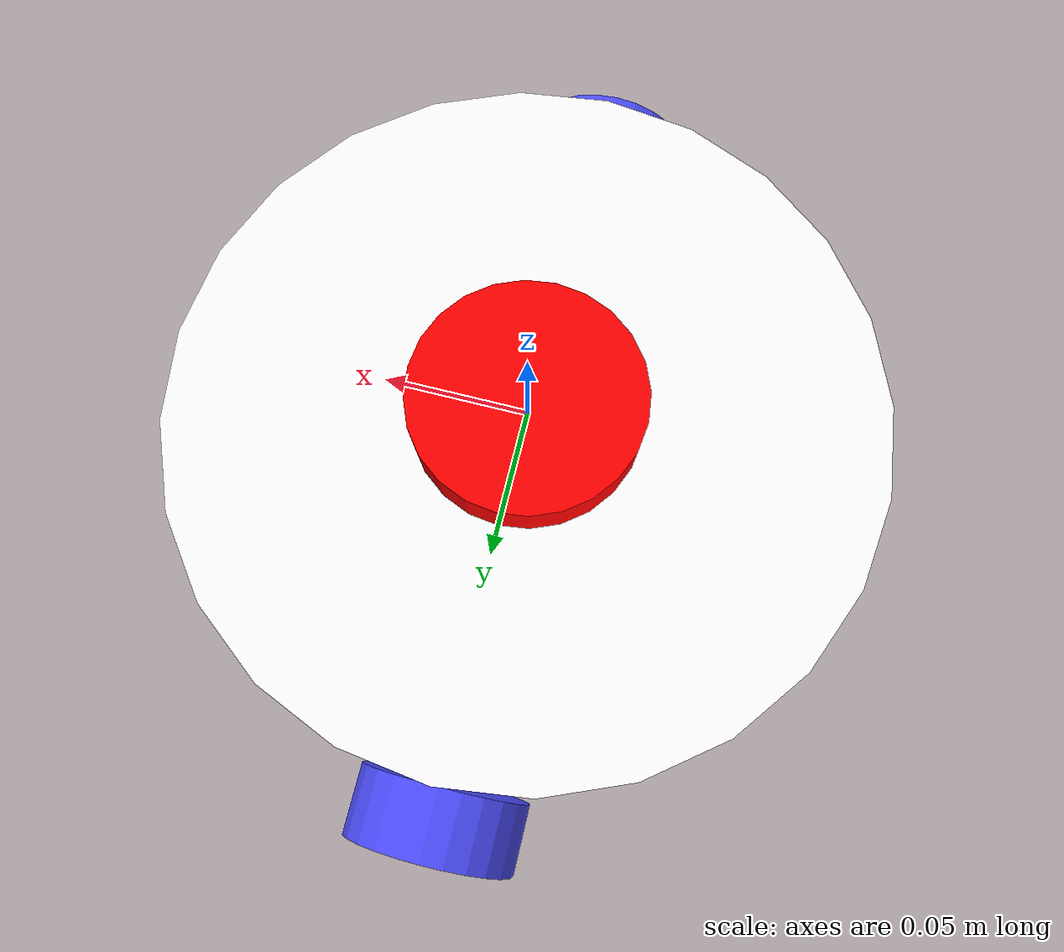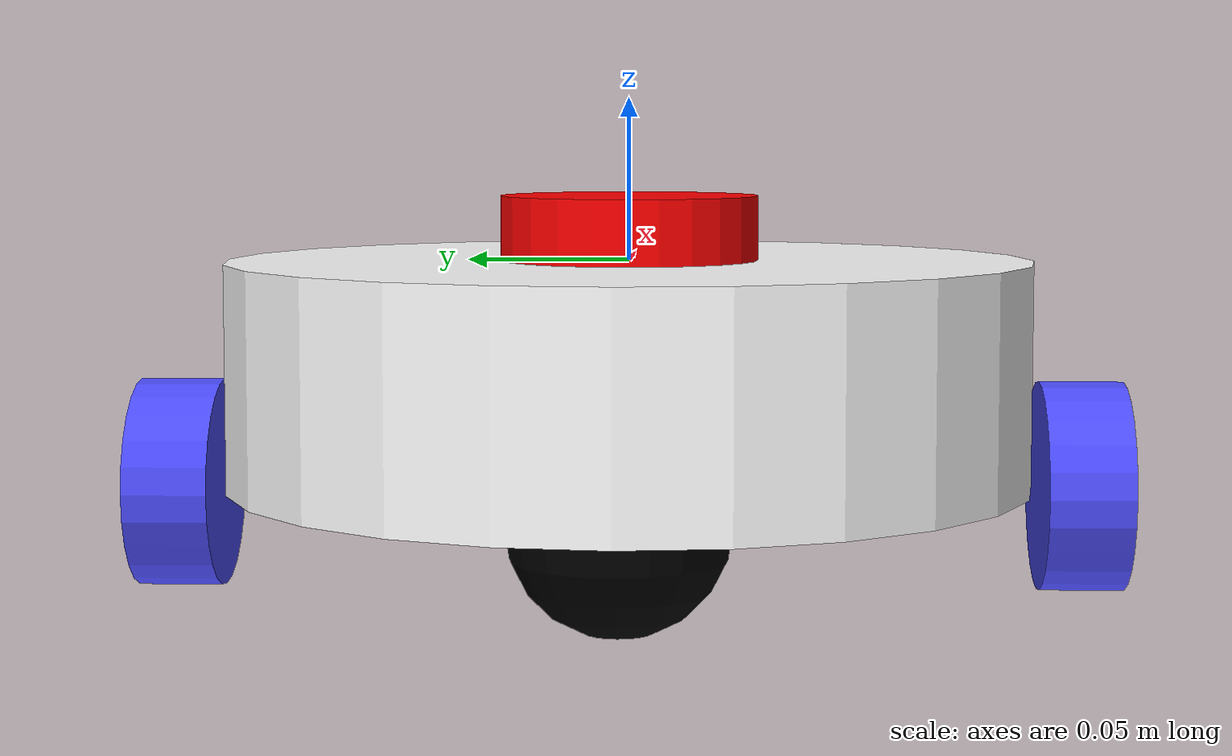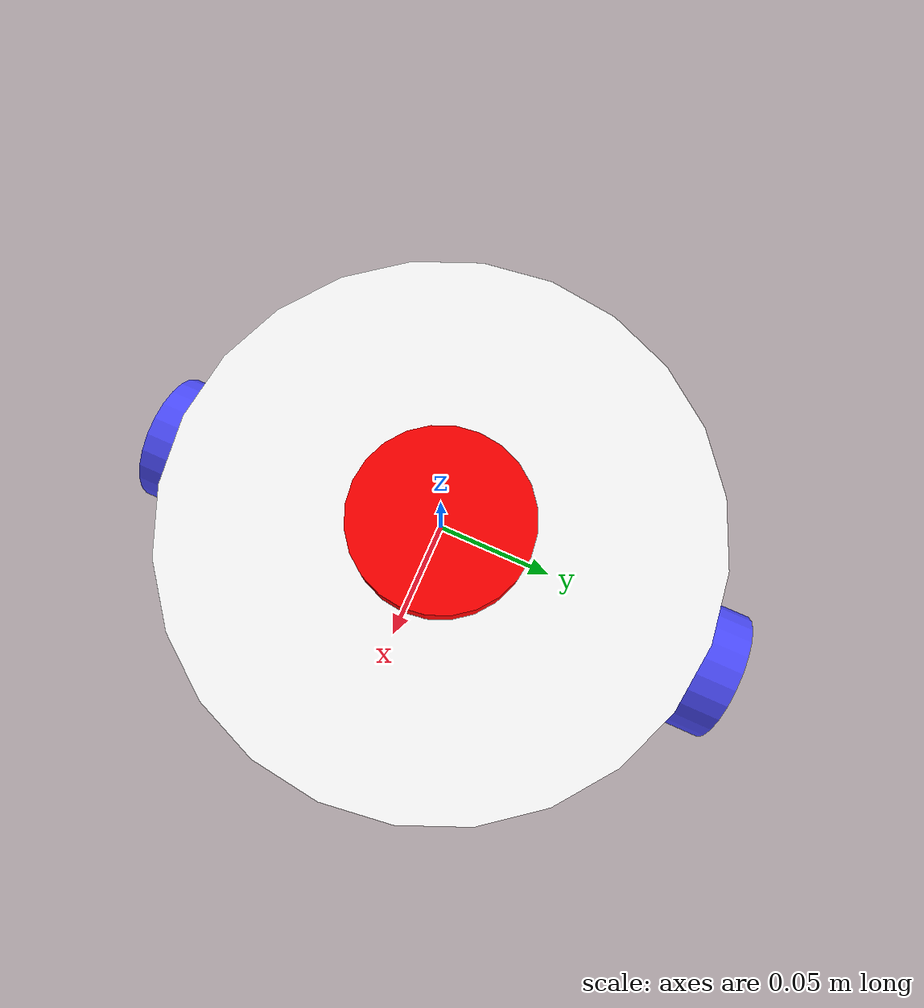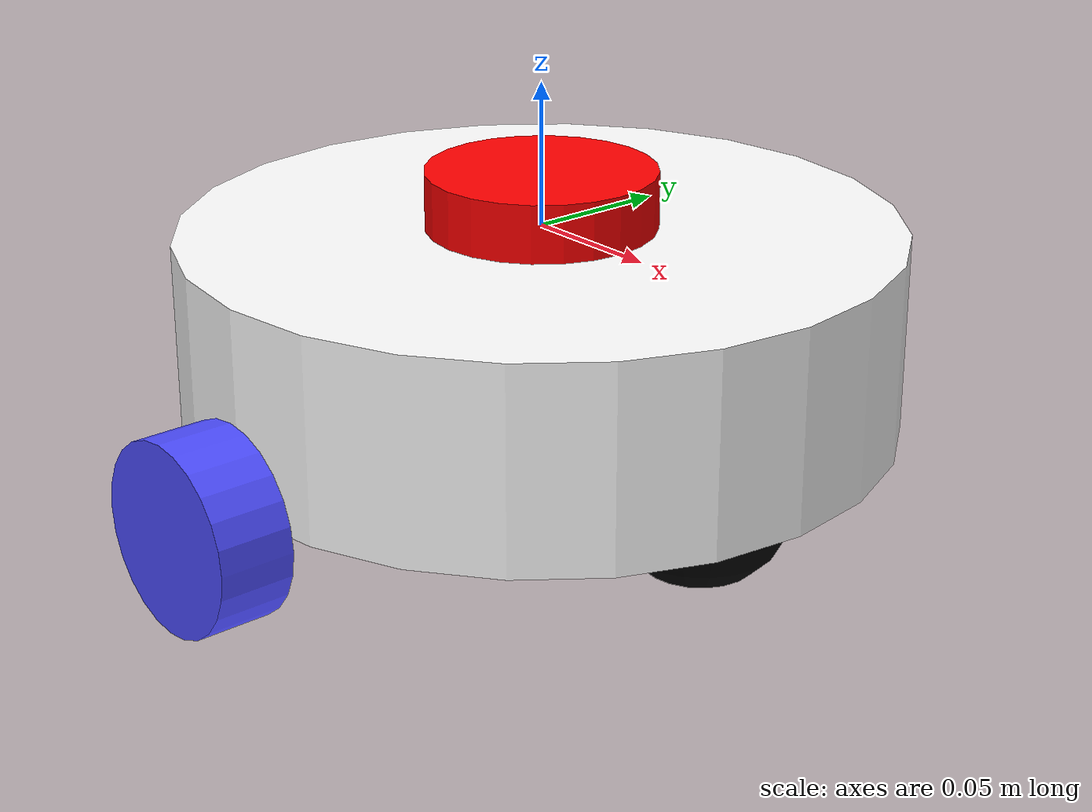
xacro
<?xml version="1.0"?>
<robot xmlns:xacro="http://www.ros.org/wiki/xacro"  name="robot">
    <xacro:arg name = "use_ros2_control" default="true"/>

    <xacro:include filename="robot_core.xacro"/>

    <xacro:if value = "$(arg use_ros2_control)">
        <xacro:include filename="ros2_control.xacro"/>
    </xacro:if>

    <xacro:unless value = "$(arg use_ros2_control)">
        <xacro:include filename="gazebo_control.xacro"/>
    </xacro:unless>

    <xacro:include filename="lidar.xacro"/>

</robot>

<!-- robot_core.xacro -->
<robot xmlns:xacro="http://www.ros.org/wiki/xacro">

    <xacro:include filename="inertial_macros.xacro"/>

    <material name = "white">
        <color rgba = "1 1 1 1"/>
    </material>

    <material name = "orange">
        <color rgba = "1 0.3 0.1 1"/>
    </material>

    <material name = "blue">
        <color rgba = "0.3 0.3 1 1"/>
    </material>

    <material name = "black">
        <color rgba = "0 0 0 1"/>
    </material>

    <material name = "red">
        <color rgba = "1 0 0 1"/>
    </material>

    <!-- base link -->
    <link name = "base_link">

    </link>

    <!-- Base foot print -->
     <joint name="base_footprint_joint" type="fixed">
        <parent link="base_link"/>
        <child link = "base_footprint"/>
        <origin xyz = "0 0 0" rpy="0 0 0"/>
     </joint>

     <link name="base_footprint">

     </link>

    <!-- Chassis -->
    <joint name = "chassis_joint" type="fixed">
        <parent link="base_link"/>
        <child link = "chassis"/>
        <origin xyz = "0 0 -0.07"/>
    </joint>

    <link name="chassis">
        <visual>
            <origin xyz = "0 0 0.035"/>
            <geometry>
                <cylinder radius = "0.125" length = "0.07"/>
            </geometry>
            <material name="white"/>
        </visual>

        <collision>
            <origin xyz = "0 0 0.035"/>
            <geometry>
                <cylinder radius = "0.125" length = "0.07"/>
            </geometry>
        </collision>

        <xacro:inertial_cylinder mass= "0.5" radius="0.125" length="0.07">
            <origin xyz="0.0 0.0 0.035" rpy="0.0 0.0 0.0"/>

        </xacro:inertial_cylinder>
    </link>

    <gazebo reference="chassis">
        <material>Gazebo/White</material>
    </gazebo>

    <!-- left wheel -->
    <joint name = "left_wheel_joint" type="continuous">
        <parent link="base_link"/>
        <child link="left_wheel"/>
        <origin xyz="0.0 0.14 -0.07" rpy="-${pi/2} 0.0 0.0"/>
        <axis xyz="0.0 0.0 1"/>

    </joint>

    <link name="left_wheel">
        <visual>
            <origin xyz="0 0 0"/>
            <geometry>
                <cylinder radius="0.0325" length="0.026"/>
            </geometry>
            <material name="blue"/>
        </visual>

        <collision>
            <origin xyz="0 0 0"/>
            <geometry>
                <sphere radius="0.0325"/>
            </geometry>
        </collision>

        <xacro:inertial_cylinder mass= "0.1" radius="0.0325" length="0.026">
            <origin xyz="0.0 0.0 0.0" rpy="0.0 0.0 0.0"/>

        </xacro:inertial_cylinder>
    </link>

    <gazebo reference="left_wheel">
        <material>Gazebo/Blue</material>
    </gazebo>

    <!-- right wheel -->
    <joint name = "right_wheel_joint" type="continuous">
        <parent link="base_link"/>
        <child link="right_wheel"/>
        <origin xyz="0.0 -0.14 -0.07" rpy="${pi/2} 0.0 0.0"/>
        <axis xyz="0.0 0.0 -1"/>

    </joint>

    <link name="right_wheel">
        <visual>
            <origin xyz="0 0 0"/>
            <geometry>
                <cylinder radius="0.0325" length="0.026"/>
            </geometry>
            <material name="blue"/>
        </visual>

        <collision>
            <origin xyz="0 0 0"/>
            <geometry>
                <sphere radius="0.0325"/>
            </geometry>
        </collision>

        <xacro:inertial_cylinder mass= "0.1" radius="0.0325" length="0.026">
            <origin xyz="0.0 0.0 0.0" rpy="0.0 0.0 0.0"/>

        </xacro:inertial_cylinder>
    </link>

    <gazebo reference="right_wheel">
        <material>Gazebo/Blue</material>
    </gazebo>
<!-- front Castor wheel -->
    <joint name="front_castor_wheel_joint" type="fixed">
        <parent link="chassis"/>
        <child link="front_castor_wheel"/>
        <origin xyz="0.08 0.0 0.0" rpy="0.0 0.0 0.0"/>
    </joint>

    <link name="front_castor_wheel">
        <visual>
            <origin xyz="0 0 0"/>
            <geometry>
                <sphere radius="0.0325"/>
            </geometry>
            <material name="black"/>
        </visual>

        <collision>
            <origin xyz="0 0 0"/>
            <geometry>
                <sphere radius="0.0325"/>
            </geometry>
        </collision>

        <xacro:inertial_sphere mass= "0.1" radius="0.0325">
            <origin xyz="0.0 0.0 0.0" rpy="0.0 0.0 0.0"/>

        </xacro:inertial_sphere>

    </link>

    <gazebo reference="front_castor_wheel">
        <material>Gazebo/Black</material>
        <mu1 value="0.001"/>
        <mu2 value="0.001"/>
    </gazebo>

    <!-- back Castor wheel -->
    <joint name="back_castor_wheel_joint" type="fixed">
        <parent link="chassis"/>
        <child link="back_castor_wheel"/>
        <origin xyz="-0.08 0.0 0.0" rpy="0.0 0.0 0.0"/>
    </joint>

    <link name="back_castor_wheel">
        <visual>
            <origin xyz="0 0 0"/>
            <geometry>
                <sphere radius="0.0325"/>
            </geometry>
            <material name="black"/>
        </visual>

        <collision>
            <origin xyz="0 0 0"/>
            <geometry>
                <sphere radius="0.0325"/>
            </geometry>
        </collision>

        <xacro:inertial_sphere mass= "0.1" radius="0.0325">
            <origin xyz="0.0 0.0 0.0" rpy="0.0 0.0 0.0"/>

        </xacro:inertial_sphere>
    </link>

    <gazebo reference="back_castor_wheel">
        <material>Gazebo/Black</material>
        <mu1 value="0.001"/>
        <mu2 value="0.001"/>
    </gazebo>

</robot>

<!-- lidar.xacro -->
<robot xmlns:xacro="http://www.ros.org/wiki/xacro">

    <joint name="laser_joint" type="fixed">
        <parent link="chassis"/>
        <child link="laser_frame"/>
        <origin xyz="0.0 0.0 0.08" rpy="0.0 0.0 0.0"/>
    </joint>

    <link name="laser_frame">
        <visual>
            <origin xyz = "0 0 0"/>
            <geometry>
                <cylinder radius = "0.04" length = "0.02"/>
            </geometry>
            <material name="red"/>
        </visual>

        <collision>
            <origin xyz = "0 0 0"/>
            <geometry>
                <cylinder radius = "0.04" length = "0.02"/>
            </geometry>
        </collision>

        <xacro:inertial_cylinder mass= "0.1" radius="0.04" length="0.02">
            <origin xyz="0.0 0.0 0." rpy="0.0 0.0 0.0"/>

        </xacro:inertial_cylinder>
    </link>

    <gazebo reference="laser_frame">
        <material>Gazebo/Red</material>
        <sensor name="laser" type="ray">
            <pose>0 0 0 0 0 0</pose>
            <visualize>true</visualize>
            <update_rate>30</update_rate>
            <ray>
                <scan>
                    <horizontal>
                        <samples>360</samples>
                        <resolution>1</resolution>
                        <min_angle>-3.14</min_angle>
                        <max_angle>3.14</max_angle>
                    </horizontal>
                </scan>
                <range>
                    <min>0.3</min>
                    <max>12</max>
                    <resolution>0.01</resolution>
                </range>
            </ray>
            <plugin name="laser_controller" filename="libgazebo_ros_ray_sensor.so">
                <ros>
                    <argument>~/out:=scan</argument>
                </ros>
                <output_type>sensor_msgs/LaserScan</output_type>
                <frame_name>laser_frame</frame_name>
            </plugin>
        </sensor>

    </gazebo>

</robot>
